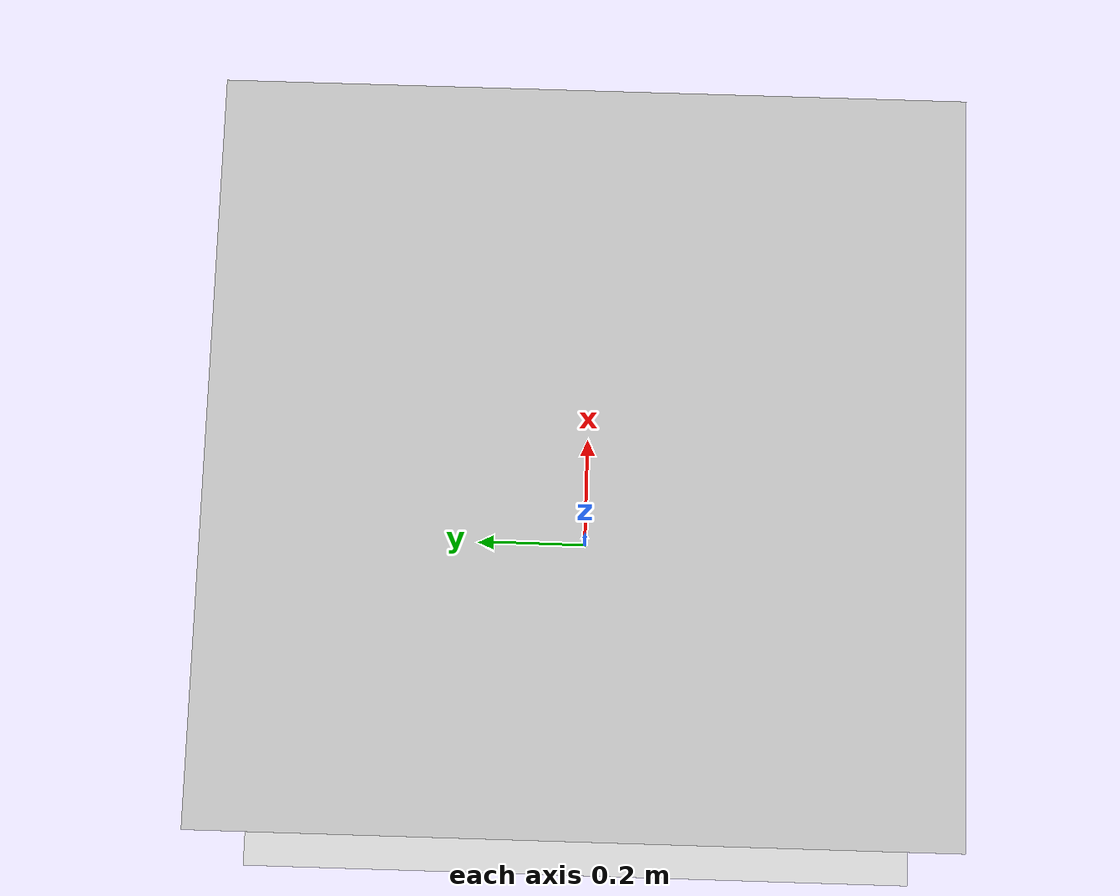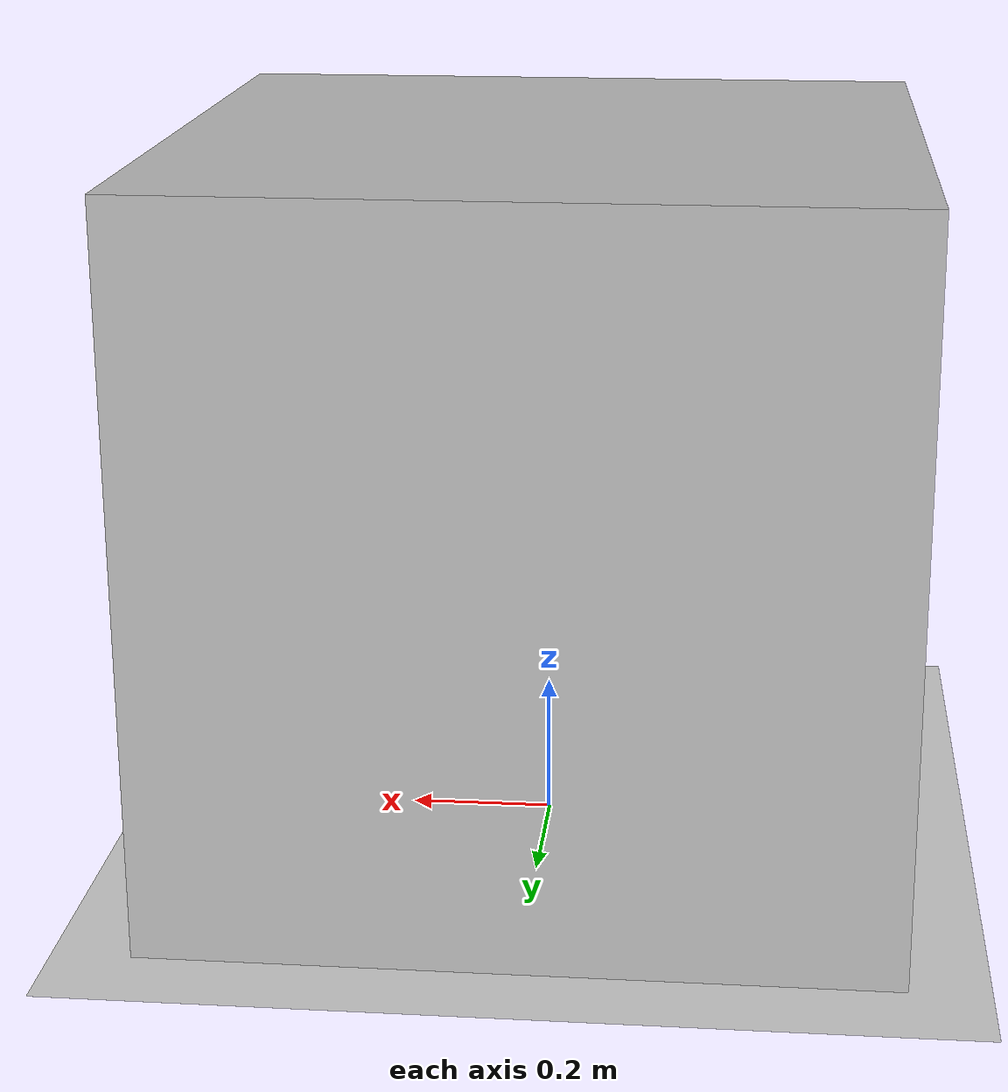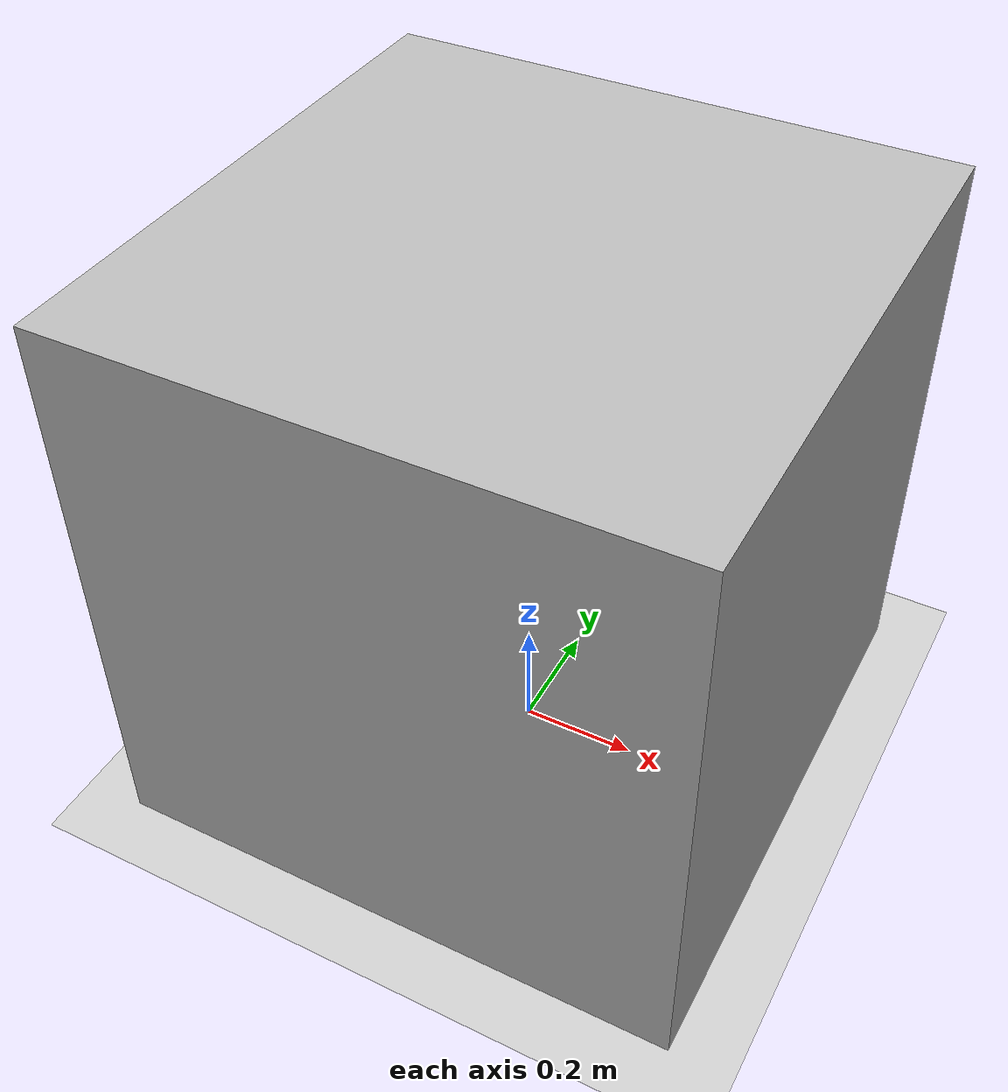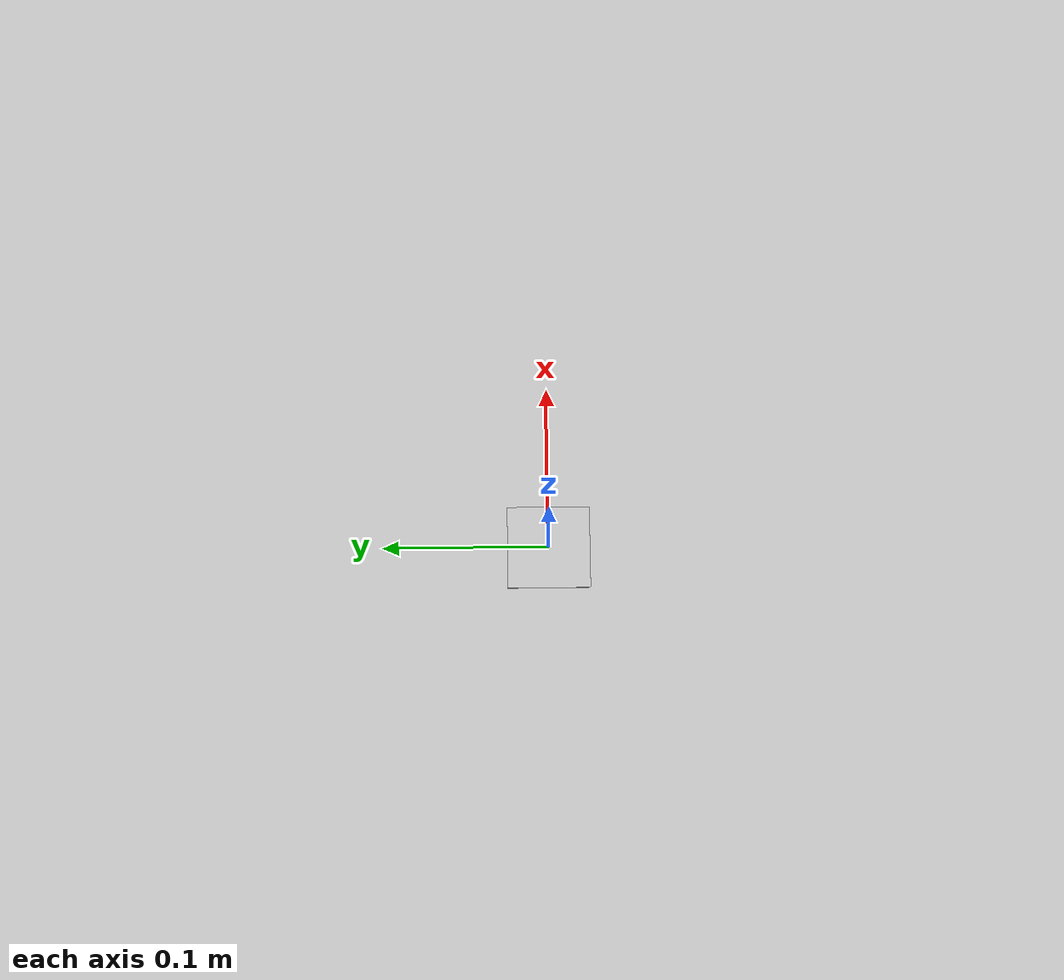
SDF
<?xml version="1.0" ?>

<sdf version="1.5">
	<world name="default">
		<!-- A global light source -->
		<include>
			<uri>model://sun</uri>
		</include>

		<!-- A ground plane -->
		<include>
			<uri>model://ground_plane</uri>
		</include>

		<!-- adding apriltag to the world -->
		<include>
			<uri>model://apriltag_1</uri>
		</include>

		<include>
			<uri>model://apriltag_3</uri>
		</include>

	</world>
</sdf>

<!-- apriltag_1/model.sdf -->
<sdf version="1.4">
  <model name="apriltag_1">
    <static>0</static>
    <link name="marker">
      <inertial>
        <mass>0.1</mass>
        <inertia>
          <ixx>0.000000</ixx>
          <ixy>0.000000</ixy>
          <ixz>0.000000</ixz>
          <iyy>0.000000</iyy>
          <iyz>0.000000</iyz>
          <izz>0.000000</izz>
        </inertia>
      </inertial>
      <visual name="visual">
        <pose>0 0 0 0 0 1.57</pose>
        <geometry>
          <box>
            <size>0.05 0.05 0.001</size>
            <!-- SIZE OF THE MARKER + MARGIN -->
          </box>
        </geometry>
        <material>
          <script>
	    <uri>model://apriltag_1/material/scripts</uri>
	    <uri>model://apriltag_1/material/textures</uri>
            <name>Apriltag/apriltag_1</name>
          </script>
        </material>
      </visual>
      <collision name="collision">
        <geometry>
          <box>
            <size>0.05 0.05 0.001</size>
            <!-- SIZE OF THE MARKER + MARGIN -->
          </box>
        </geometry>
        <surface>
          <bounce />
          <friction>
            <ode />
          </friction>
          <contact>
            <ode />
          </contact>
        </surface>
      </collision>
      <self_collide>1</self_collide>
      <kinematic>0</kinematic>
      <gravity>1</gravity>
    </link>
  </model>
</sdf>

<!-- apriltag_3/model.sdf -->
<sdf version="1.5">
  <model name="apriltag3">
    <pose>0 0 0.5 0 0 0</pose>
    <static>true</static>
    <link name="link">
      <collision name="collision">
        <geometry>
          <box>
            <size>1 1 1</size>
          </box>
        </geometry>
      </collision>
      <visual name='visual'>
        <pose>0 0 0 0 0 0</pose>
        <geometry>
            <mesh>
              <uri>model://apriltag_3/meshes/aptag_3.dae</uri>
            </mesh>
        </geometry>
      </visual>
    </link>
  </model>
</sdf>
